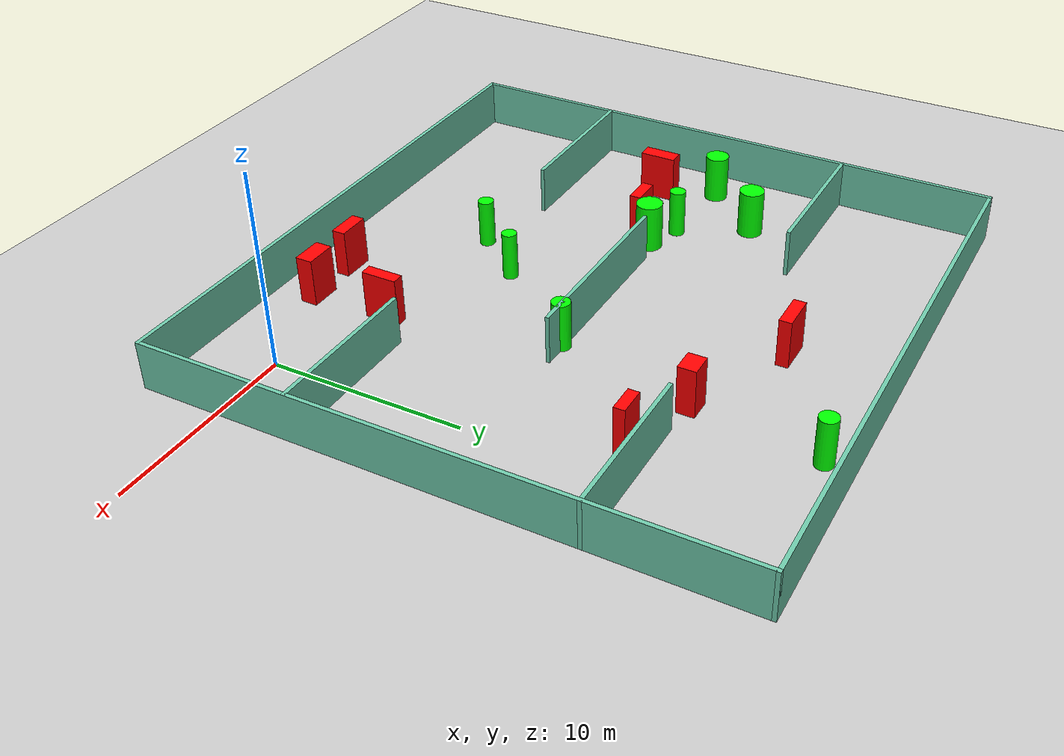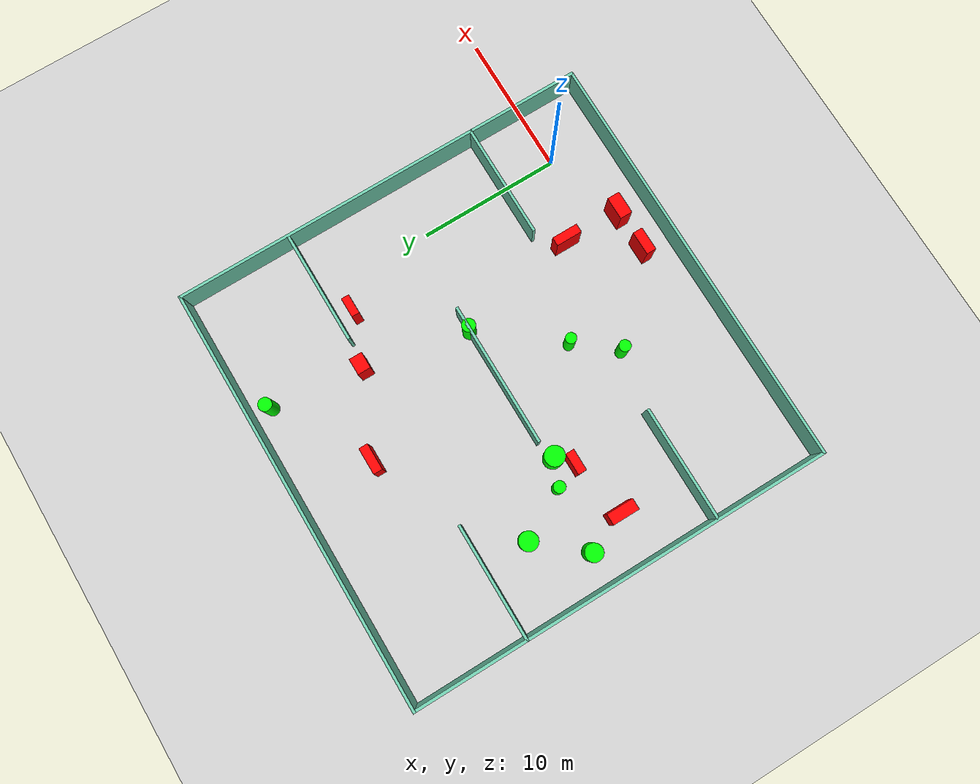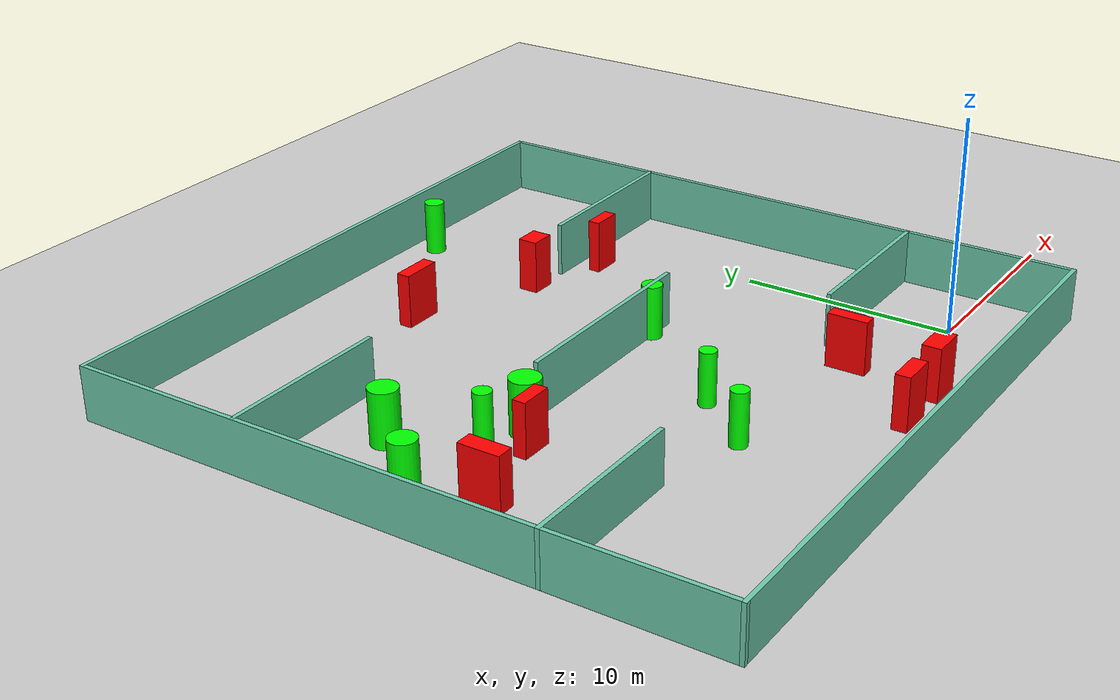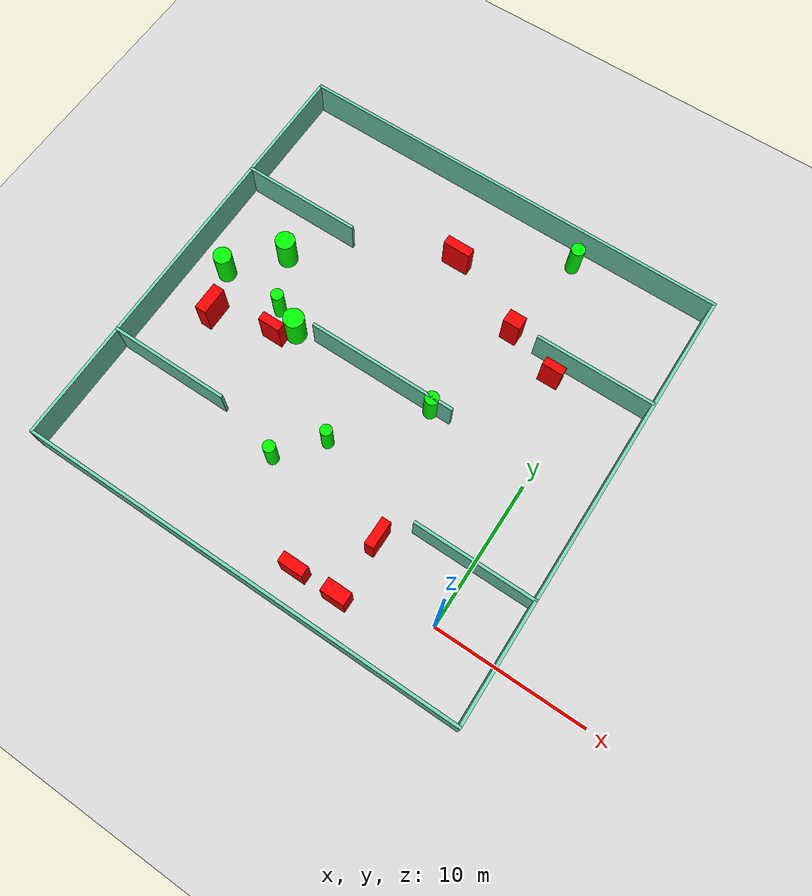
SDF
<sdf version="1.7">
 <world name="default">
  <light name="sun" type="directional">
   <pose>0 0 10 0 -0 0</pose>
   <diffuse>0.8 0.8 0.8 1</diffuse>
   <specular>0.2 0.2 0.2 1</specular>
   <attenuation>
    <range>1000</range>
    <constant>0.9</constant>
    <linear>0.01</linear>
    <quadratic>0.001</quadratic>
   </attenuation>
   <direction>-0.5 0.1 -0.9</direction>
   <spot><inner_angle>0</inner_angle><outer_angle>0</outer_angle><falloff>0</falloff></spot>
  </light>
  <model name="ground_plane">
   <static>1</static>
   <link name="link">
    <collision name="collision">
     <geometry><plane><normal>0 0 1</normal><size>100 100</size></plane></geometry>
     <surface>
      <contact><collide_bitmask>65535</collide_bitmask></contact>
      <friction><ode><mu>100</mu><mu2>50</mu2></ode></friction>
     </surface>
    </collision>
    <visual name="visual">
     <cast_shadows>0</cast_shadows>
     <geometry><plane><normal>0 0 1</normal><size>100 100</size></plane></geometry>
     <material>
      <script><uri>file://media/materials/scripts/gazebo.material</uri><name>Gazebo/Grey</name></script>
     </material>
    </visual>
   </link>
  </model>
  <gravity>0 0 -9.8</gravity>
  <magnetic_field>6e-06 2.3e-05 -4.2e-05</magnetic_field>
  <atmosphere type="adiabatic"/>
  <physics type="ode">
   <max_step_size>0.001</max_step_size>
   <real_time_factor>1</real_time_factor>
   <real_time_update_rate>1000</real_time_update_rate>
  </physics>
  <scene><ambient>0.4 0.4 0.4 1</ambient><background>0.7 0.7 0.7 1</background><shadows>1</shadows></scene>
  <spherical_coordinates>
   <surface_model>EARTH_WGS84</surface_model>
   <latitude_deg>0</latitude_deg>
   <longitude_deg>0</longitude_deg>
   <elevation>0</elevation>
   <heading_deg>0</heading_deg>
  </spherical_coordinates>
  <model name="my_base_walls">
   <link name="Wall_10">
    <collision name="Wall_10_Collision">
     <geometry><box><size>8.2 0.2 2.5</size></box></geometry>
     <pose>0 0 1.25 0 -0 0</pose>
    </collision>
    <visual name="Wall_10_Visual">
     <pose>0 0 1.25 0 -0 0</pose>
     <geometry><box><size>8.2 0.2 2.5</size></box></geometry>
     <material>
      <script><uri>file://media/materials/scripts/gazebo.material</uri><name>Gazebo/Grey</name></script>
      <ambient>0.435294 0.796078 0.67451 1</ambient>
     </material>
     <meta><layer>0</layer></meta>
    </visual>
    <pose>-11 -7 0 0 -0 0</pose>
   </link>
   <link name="Wall_12">
    <collision name="Wall_12_Collision">
     <geometry><box><size>8.2 0.2 2.5</size></box></geometry>
     <pose>0 0 1.25 0 -0 0</pose>
    </collision>
    <visual name="Wall_12_Visual">
     <pose>0 0 1.25 0 -0 0</pose>
     <geometry><box><size>8.2 0.2 2.5</size></box></geometry>
     <material>
      <script><uri>file://media/materials/scripts/gazebo.material</uri><name>Gazebo/Grey</name></script>
      <ambient>0.435294 0.796078 0.67451 1</ambient>
     </material>
     <meta><layer>0</layer></meta>
    </visual>
    <pose>-11 7 0 0 -0 0</pose>
   </link>
   <link name="Wall_14">
    <collision name="Wall_14_Collision">
     <geometry><box><size>8.2 0.2 2.5</size></box></geometry>
     <pose>0 0 1.25 0 -0 0</pose>
    </collision>
    <visual name="Wall_14_Visual">
     <pose>0 0 1.25 0 -0 0</pose>
     <geometry><box><size>8.2 0.2 2.5</size></box></geometry>
     <material>
      <script><uri>file://media/materials/scripts/gazebo.material</uri><name>Gazebo/Grey</name></script>
      <ambient>0.435294 0.796078 0.67451 1</ambient>
     </material>
     <meta><layer>0</layer></meta>
    </visual>
    <pose>11 7 0 0 -0 3.14159</pose>
   </link>
   <link name="Wall_16">
    <collision name="Wall_16_Collision">
     <geometry><box><size>10.2 0.2 2.5</size></box></geometry>
     <pose>0 0 1.25 0 -0 0</pose>
    </collision>
    <visual name="Wall_16_Visual">
     <pose>0 0 1.25 0 -0 0</pose>
     <geometry><box><size>10.2 0.2 2.5</size></box></geometry>
     <material>
      <script><uri>file://media/materials/scripts/gazebo.material</uri><name>Gazebo/Grey</name></script>
      <ambient>0.435294 0.796078 0.67451 1</ambient>
     </material>
     <meta><layer>0</layer></meta>
    </visual>
    <pose>0 0 0 0 -0 3.14159</pose>
   </link>
   <link name="Wall_2">
    <collision name="Wall_2_Collision">
     <geometry><box><size>30.2 0.2 2.5</size></box></geometry>
     <pose>0 0 1.25 0 -0 0</pose>
    </collision>
    <visual name="Wall_2_Visual">
     <pose>0 0 1.25 0 -0 0</pose>
     <geometry><box><size>30.2 0.2 2.5</size></box></geometry>
     <material>
      <script><uri>file://media/materials/scripts/gazebo.material</uri><name>Gazebo/Grey</name></script>
      <ambient>0.435294 0.796078 0.67451 1</ambient>
     </material>
     <meta><layer>0</layer></meta>
    </visual>
    <pose>0 -15 0 0 -0 3.14159</pose>
   </link>
   <link name="Wall_3">
    <collision name="Wall_3_Collision">
     <geometry><box><size>30.2 0.2 2.5</size></box></geometry>
     <pose>0 0 1.25 0 -0 0</pose>
    </collision>
    <visual name="Wall_3_Visual">
     <pose>0 0 1.25 0 -0 0</pose>
     <geometry><box><size>30.2 0.2 2.5</size></box></geometry>
     <material>
      <script><uri>file://media/materials/scripts/gazebo.material</uri><name>Gazebo/Grey</name></script>
      <ambient>0.435294 0.796078 0.67451 1</ambient>
     </material>
     <meta><layer>0</layer></meta>
    </visual>
    <pose>-15 0 0 0 -0 1.5708</pose>
   </link>
   <link name="Wall_4">
    <collision name="Wall_4_Collision">
     <geometry><box><size>30.2 0.2 2.5</size></box></geometry>
     <pose>0 0 1.25 0 -0 0</pose>
    </collision>
    <visual name="Wall_4_Visual">
     <pose>0 0 1.25 0 -0 0</pose>
     <geometry><box><size>30.2 0.2 2.5</size></box></geometry>
     <material>
      <script><uri>file://media/materials/scripts/gazebo.material</uri><name>Gazebo/Grey</name></script>
      <ambient>0.435294 0.796078 0.67451 1</ambient>
     </material>
     <meta><layer>0</layer></meta>
    </visual>
    <pose>0 15 0 0 -0 0</pose>
   </link>
   <link name="Wall_6">
    <collision name="Wall_6_Collision">
     <geometry><box><size>30.2 0.2 2.5</size></box></geometry>
     <pose>0 0 1.25 0 -0 0</pose>
    </collision>
    <visual name="Wall_6_Visual">
     <pose>0 0 1.25 0 -0 0</pose>
     <geometry><box><size>30.2 0.2 2.5</size></box></geometry>
     <material>
      <script><uri>file://media/materials/scripts/gazebo.material</uri><name>Gazebo/Grey</name></script>
      <ambient>0.435294 0.796078 0.67451 1</ambient>
     </material>
     <meta><layer>0</layer></meta>
    </visual>
    <pose>15 0 0 0 -0 1.5708</pose>
   </link>
   <link name="Wall_8">
    <collision name="Wall_8_Collision">
     <geometry><box><size>8.2 0.2 2.5</size></box></geometry>
     <pose>0 0 1.25 0 -0 0</pose>
    </collision>
    <visual name="Wall_8_Visual">
     <pose>0 0 1.25 0 -0 0</pose>
     <geometry><box><size>8.2 0.2 2.5</size></box></geometry>
     <material>
      <script><uri>file://media/materials/scripts/gazebo.material</uri><name>Gazebo/Grey</name></script>
      <ambient>0.435294 0.796078 0.67451 1</ambient>
     </material>
     <meta><layer>0</layer></meta>
    </visual>
    <pose>11 -7 0 0 -0 3.14159</pose>
   </link>
   <static>1</static>
   <pose>-11 11 0 0 -0 0</pose>
  </model>
  <model name="cylinder1">
   <static>1</static>
   <link name="link">
    <inertial>
     <mass>1</mass>
     <inertia><ixx>0.5</ixx><ixy>0</ixy><ixz>0</ixz><iyy>0.5</iyy><iyz>0</iyz><izz>1</izz></inertia>
    </inertial>
    <collision name="collision">
     <geometry><cylinder><radius>0.46215460429992455</radius><length>2.5</length></cylinder></geometry>
    </collision>
    <visual name="visual">
     <geometry><cylinder><radius>0.46215460429992455</radius><length>2.5</length></cylinder></geometry>
     <material>
      <ambient>0 1 0 1</ambient>
      <diffuse>0 1 0 1</diffuse>
      <specular>0.1 0.1 0.1 1</specular>
      <emissive>0 0 0 0</emissive>
     </material>
    </visual>
   </link>
   <pose>-4.998778738026422 24.670019856193445 1.25 0 0 0</pose>
  </model>
  <model name="cylinder2">
   <static>1</static>
   <link name="link">
    <inertial>
     <mass>1</mass>
     <inertia><ixx>0.5</ixx><ixy>0</ixy><ixz>0</ixz><iyy>0.5</iyy><iyz>0</iyz><izz>1</izz></inertia>
    </inertial>
    <collision name="collision">
     <geometry><cylinder><radius>0.4703987232369028</radius><length>2.5</length></cylinder></geometry>
    </collision>
    <visual name="visual">
     <geometry><cylinder><radius>0.4703987232369028</radius><length>2.5</length></cylinder></geometry>
     <material>
      <ambient>0 1 0 1</ambient>
      <diffuse>0 1 0 1</diffuse>
      <specular>0.1 0.1 0.1 1</specular>
      <emissive>0 0 0 0</emissive>
     </material>
    </visual>
   </link>
   <pose>-7.321124294537537 10.942505513526026 1.25 0 0 0</pose>
  </model>
  <model name="cylinder3">
   <static>1</static>
   <link name="link">
    <inertial>
     <mass>1</mass>
     <inertia><ixx>0.5</ixx><ixy>0</ixy><ixz>0</ixz><iyy>0.5</iyy><iyz>0</iyz><izz>1</izz></inertia>
    </inertial>
    <collision name="collision">
     <geometry><cylinder><radius>0.6526841288285025</radius><length>2.5</length></cylinder></geometry>
    </collision>
    <visual name="visual">
     <geometry><cylinder><radius>0.6526841288285025</radius><length>2.5</length></cylinder></geometry>
     <material>
      <ambient>0 1 0 1</ambient>
      <diffuse>0 1 0 1</diffuse>
      <specular>0.1 0.1 0.1 1</specular>
      <emissive>0 0 0 0</emissive>
     </material>
    </visual>
   </link>
   <pose>-21.001899302151706 14.809823821970188 1.25 0 0 0</pose>
  </model>
  <model name="cylinder4">
   <static>1</static>
   <link name="link">
    <inertial>
     <mass>1</mass>
     <inertia><ixx>0.5</ixx><ixy>0</ixy><ixz>0</ixz><iyy>0.5</iyy><iyz>0</iyz><izz>1</izz></inertia>
    </inertial>
    <collision name="collision">
     <geometry><cylinder><radius>0.3834555029614906</radius><length>2.5</length></cylinder></geometry>
    </collision>
    <visual name="visual">
     <geometry><cylinder><radius>0.3834555029614906</radius><length>2.5</length></cylinder></geometry>
     <material>
      <ambient>0 1 0 1</ambient>
      <diffuse>0 1 0 1</diffuse>
      <specular>0.1 0.1 0.1 1</specular>
      <emissive>0 0 0 0</emissive>
     </material>
    </visual>
   </link>
   <pose>-11.469292746239757 5.739964605924261 1.25 0 0 0</pose>
  </model>
  <model name="cylinder5">
   <static>1</static>
   <link name="link">
    <inertial>
     <mass>1</mass>
     <inertia><ixx>0.5</ixx><ixy>0</ixy><ixz>0</ixz><iyy>0.5</iyy><iyz>0</iyz><izz>1</izz></inertia>
    </inertial>
    <collision name="collision">
     <geometry><cylinder><radius>0.615104245842122</radius><length>2.5</length></cylinder></geometry>
    </collision>
    <visual name="visual">
     <geometry><cylinder><radius>0.615104245842122</radius><length>2.5</length></cylinder></geometry>
     <material>
      <ambient>0 1 0 1</ambient>
      <diffuse>0 1 0 1</diffuse>
      <specular>0.1 0.1 0.1 1</specular>
      <emissive>0 0 0 0</emissive>
     </material>
    </visual>
   </link>
   <pose>-23.697639395594454 11.697167770574843 1.25 0 0 0</pose>
  </model>
  <model name="cylinder6">
   <static>1</static>
   <link name="link">
    <inertial>
     <mass>1</mass>
     <inertia><ixx>0.5</ixx><ixy>0</ixy><ixz>0</ixz><iyy>0.5</iyy><iyz>0</iyz><izz>1</izz></inertia>
    </inertial>
    <collision name="collision">
     <geometry><cylinder><radius>0.4036507998658933</radius><length>2.5</length></cylinder></geometry>
    </collision>
    <visual name="visual">
     <geometry><cylinder><radius>0.4036507998658933</radius><length>2.5</length></cylinder></geometry>
     <material>
      <ambient>0 1 0 1</ambient>
      <diffuse>0 1 0 1</diffuse>
      <specular>0.1 0.1 0.1 1</specular>
      <emissive>0 0 0 0</emissive>
     </material>
    </visual>
   </link>
   <pose>-13.69614036838221 3.035351811924061 1.25 0 0 0</pose>
  </model>
  <model name="cylinder7">
   <static>1</static>
   <link name="link">
    <inertial>
     <mass>1</mass>
     <inertia><ixx>0.5</ixx><ixy>0</ixy><ixz>0</ixz><iyy>0.5</iyy><iyz>0</iyz><izz>1</izz></inertia>
    </inertial>
    <collision name="collision">
     <geometry><cylinder><radius>0.4114379828987157</radius><length>2.5</length></cylinder></geometry>
    </collision>
    <visual name="visual">
     <geometry><cylinder><radius>0.4114379828987157</radius><length>2.5</length></cylinder></geometry>
     <material>
      <ambient>0 1 0 1</ambient>
      <diffuse>0 1 0 1</diffuse>
      <specular>0.1 0.1 0.1 1</specular>
      <emissive>0 0 0 0</emissive>
     </material>
    </visual>
   </link>
   <pose>-19.16077640219607 11.396815200748973 1.25 0 0 0</pose>
  </model>
  <model name="cylinder8">
   <static>1</static>
   <link name="link">
    <inertial>
     <mass>1</mass>
     <inertia><ixx>0.5</ixx><ixy>0</ixy><ixz>0</ixz><iyy>0.5</iyy><iyz>0</iyz><izz>1</izz></inertia>
    </inertial>
    <collision name="collision">
     <geometry><cylinder><radius>0.6908905316060212</radius><length>2.5</length></cylinder></geometry>
    </collision>
    <visual name="visual">
     <geometry><cylinder><radius>0.6908905316060212</radius><length>2.5</length></cylinder></geometry>
     <material>
      <ambient>0 1 0 1</ambient>
      <diffuse>0 1 0 1</diffuse>
      <specular>0.1 0.1 0.1 1</specular>
      <emissive>0 0 0 0</emissive>
     </material>
    </visual>
   </link>
   <pose>-17.354012951652166 10.634613048657238 1.25 0 0 0</pose>
  </model>
  <model name="box1">
   <static>1</static>
   <link name="link">
    <inertial>
     <mass>1</mass>
     <inertia><ixx>0.083</ixx><ixy>0</ixy><ixz>0</ixz><iyy>0.083</iyy><iyz>0</iyz><izz>0.083</izz></inertia>
    </inertial>
    <collision name="collision">
     <geometry><box><size>0.793061489598514 1.9189927991444877 2.5</size></box></geometry>
    </collision>
    <visual name="visual">
     <geometry><box><size>0.793061489598514 1.9189927991444877 2.5</size></box></geometry>
     <material>
      <ambient>1 0 0 1</ambient>
      <diffuse>1 0 0 1</diffuse>
      <specular>0.1 0.1 0.1 1</specular>
      <emissive>0 0 0 0</emissive>
     </material>
    </visual>
    <sensor name="my_contact" type="contact">
     <contact><collision>box_collision</collision><topic>__default_topic__</topic></contact>
    </sensor>
   </link>
   <pose>-22.51820384068126 8.82646546001762 1.25 0 0 0</pose>
  </model>
  <model name="box2">
   <static>1</static>
   <link name="link">
    <inertial>
     <mass>1</mass>
     <inertia><ixx>0.083</ixx><ixy>0</ixy><ixz>0</ixz><iyy>0.083</iyy><iyz>0</iyz><izz>0.083</izz></inertia>
    </inertial>
    <collision name="collision">
     <geometry><box><size>1.4007826389449836 0.5570720034265233 2.5</size></box></geometry>
    </collision>
    <visual name="visual">
     <geometry><box><size>1.4007826389449836 0.5570720034265233 2.5</size></box></geometry>
     <material>
      <ambient>1 0 0 1</ambient>
      <diffuse>1 0 0 1</diffuse>
      <specular>0.1 0.1 0.1 1</specular>
      <emissive>0 0 0 0</emissive>
     </material>
    </visual>
    <sensor name="my_contact" type="contact">
     <contact><collision>box_collision</collision><topic>__default_topic__</topic></contact>
    </sensor>
   </link>
   <pose>-2.233485940458017 16.837751244529755 1.25 0 0 0</pose>
  </model>
  <model name="box3">
   <static>1</static>
   <link name="link">
    <inertial>
     <mass>1</mass>
     <inertia><ixx>0.083</ixx><ixy>0</ixy><ixz>0</ixz><iyy>0.083</iyy><iyz>0</iyz><izz>0.083</izz></inertia>
    </inertial>
    <collision name="collision">
     <geometry><box><size>1.8911520318633808 0.6311192657458755 2.5</size></box></geometry>
    </collision>
    <visual name="visual">
     <geometry><box><size>1.8911520318633808 0.6311192657458755 2.5</size></box></geometry>
     <material>
      <ambient>1 0 0 1</ambient>
      <diffuse>1 0 0 1</diffuse>
      <specular>0.1 0.1 0.1 1</specular>
      <emissive>0 0 0 0</emissive>
     </material>
    </visual>
    <sensor name="my_contact" type="contact">
     <contact><collision>box_collision</collision><topic>__default_topic__</topic></contact>
    </sensor>
   </link>
   <pose>-11.491911759673272 20.653756424115173 1.25 0 0 0</pose>
  </model>
  <model name="box4">
   <static>1</static>
   <link name="link">
    <inertial>
     <mass>1</mass>
     <inertia><ixx>0.083</ixx><ixy>0</ixy><ixz>0</ixz><iyy>0.083</iyy><iyz>0</iyz><izz>0.083</izz></inertia>
    </inertial>
    <collision name="collision">
     <geometry><box><size>1.5306475846998686 0.6069251887498724 2.5</size></box></geometry>
    </collision>
    <visual name="visual">
     <geometry><box><size>1.5306475846998686 0.6069251887498724 2.5</size></box></geometry>
     <material>
      <ambient>1 0 0 1</ambient>
      <diffuse>1 0 0 1</diffuse>
      <specular>0.1 0.1 0.1 1</specular>
      <emissive>0 0 0 0</emissive>
     </material>
    </visual>
    <sensor name="my_contact" type="contact">
     <contact><collision>box_collision</collision><topic>__default_topic__</topic></contact>
    </sensor>
   </link>
   <pose>-18.371273576584585 9.685761644817394 1.25 0 0 0</pose>
  </model>
  <model name="box5">
   <static>1</static>
   <link name="link">
    <inertial>
     <mass>1</mass>
     <inertia><ixx>0.083</ixx><ixy>0</ixy><ixz>0</ixz><iyy>0.083</iyy><iyz>0</iyz><izz>0.083</izz></inertia>
    </inertial>
    <collision name="collision">
     <geometry><box><size>0.616343338267523 1.8488168083179648 2.5</size></box></geometry>
    </collision>
    <visual name="visual">
     <geometry><box><size>0.616343338267523 1.8488168083179648 2.5</size></box></geometry>
     <material>
      <ambient>1 0 0 1</ambient>
      <diffuse>1 0 0 1</diffuse>
      <specular>0.1 0.1 0.1 1</specular>
      <emissive>0 0 0 0</emissive>
     </material>
    </visual>
    <sensor name="my_contact" type="contact">
     <contact><collision>box_collision</collision><topic>__default_topic__</topic></contact>
    </sensor>
   </link>
   <pose>-5.476489631074983 2.301204851201833 1.25 0 0 0</pose>
  </model>
  <model name="box6">
   <static>1</static>
   <link name="link">
    <inertial>
     <mass>1</mass>
     <inertia><ixx>0.083</ixx><ixy>0</ixy><ixz>0</ixz><iyy>0.083</iyy><iyz>0</iyz><izz>0.083</izz></inertia>
    </inertial>
    <collision name="collision">
     <geometry><box><size>1.6093555229195402 0.8826277968307668 2.5</size></box></geometry>
    </collision>
    <visual name="visual">
     <geometry><box><size>1.6093555229195402 0.8826277968307668 2.5</size></box></geometry>
     <material>
      <ambient>1 0 0 1</ambient>
      <diffuse>1 0 0 1</diffuse>
      <specular>0.1 0.1 0.1 1</specular>
      <emissive>0 0 0 0</emissive>
     </material>
    </visual>
    <sensor name="my_contact" type="contact">
     <contact><collision>box_collision</collision><topic>__default_topic__</topic></contact>
    </sensor>
   </link>
   <pose>-5.5676098428773475 -1.7545054510639475 1.25 0 0 0</pose>
  </model>
  <model name="box7">
   <static>1</static>
   <link name="link">
    <inertial>
     <mass>1</mass>
     <inertia><ixx>0.083</ixx><ixy>0</ixy><ixz>0</ixz><iyy>0.083</iyy><iyz>0</iyz><izz>0.083</izz></inertia>
    </inertial>
    <collision name="collision">
     <geometry><box><size>1.1654156776181108 0.921778442812702 2.5</size></box></geometry>
    </collision>
    <visual name="visual">
     <geometry><box><size>1.1654156776181108 0.921778442812702 2.5</size></box></geometry>
     <material>
      <ambient>1 0 0 1</ambient>
      <diffuse>1 0 0 1</diffuse>
      <specular>0.1 0.1 0.1 1</specular>
      <emissive>0 0 0 0</emissive>
     </material>
    </visual>
    <sensor name="my_contact" type="contact">
     <contact><collision>box_collision</collision><topic>__default_topic__</topic></contact>
    </sensor>
   </link>
   <pose>-5.845465846287864 18.197122415226087 1.25 0 0 0</pose>
  </model>
  <model name="box8">
   <static>1</static>
   <link name="link">
    <inertial>
     <mass>1</mass>
     <inertia><ixx>0.083</ixx><ixy>0</ixy><ixz>0</ixz><iyy>0.083</iyy><iyz>0</iyz><izz>0.083</izz></inertia>
    </inertial>
    <collision name="collision">
     <geometry><box><size>1.6804388078002355 0.6934745113317393 2.5</size></box></geometry>
    </collision>
    <visual name="visual">
     <geometry><box><size>1.6804388078002355 0.6934745113317393 2.5</size></box></geometry>
     <material>
      <ambient>1 0 0 1</ambient>
      <diffuse>1 0 0 1</diffuse>
      <specular>0.1 0.1 0.1 1</specular>
      <emissive>0 0 0 0</emissive>
     </material>
    </visual>
    <sensor name="my_contact" type="contact">
     <contact><collision>box_collision</collision><topic>__default_topic__</topic></contact>
    </sensor>
   </link>
   <pose>-8.4681633065866 -1.8254236497269734 1.25 0 0 0</pose>
  </model>
 </world>
</sdf>
